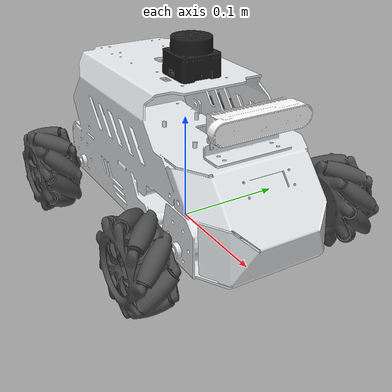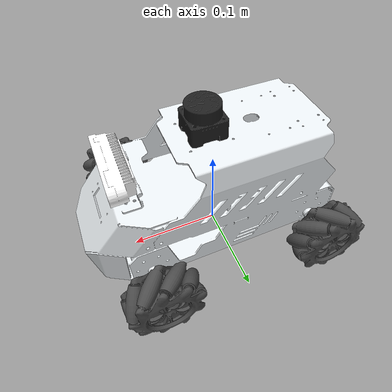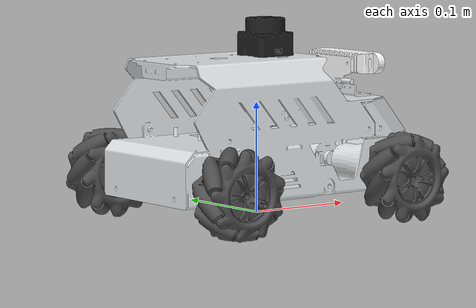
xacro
<?xml version="1.0" encoding="utf-8"?>
<robot name="yahboomcar_M1" xmlns:xacro="http://ros.org/wiki/xacro">
  <link name="robot2/imu_link"/>
  <link
    name="robot2/base_link">
    <inertial>
      <origin
        xyz="-0.0020739162578774 -4.39969271518998E-05 0.0381795619256894"
        rpy="0 0 0" />
      <mass
        value="1.12702131727643" />
      <inertia
        ixx="0.00181310723339938"
        ixy="-2.40224897360524E-06"
        ixz="6.11559242502713E-05"
        iyy="0.00349886071341033"
        iyz="2.3151802524198E-07"
        izz="0.0047267657491446" />
    </inertial>
    <visual>
      <origin
        xyz="0 0 0"
        rpy="0 0 0" />
      <geometry>
        <mesh
          filename="package://imperative_m1_description/meshes/M1Mecanum/base_link.STL" />
      </geometry>
      <material
        name="">
        <color
          rgba="0.898039215686275 0.917647058823529 0.929411764705882 1" />
      </material>
    </visual>
    <collision>
      <origin
        xyz="0 0 0"
        rpy="0 0 0" />
      <geometry>
        <mesh
          filename="package://imperative_m1_description/meshes/M1Mecanum/base_link.STL" />
      </geometry>
    </collision>
  </link>
  <link
    name="robot2/le_fr_Link">
    <inertial>
      <origin
        xyz="3.74162684547708E-05 0.0119013767503815 1.8633789082111E-05"
        rpy="0 0 0" />
      <mass
        value="0.1018682435606" />
      <inertia
        ixx="4.56509058995796E-05"
        ixy="1.72107550394689E-09"
        ixz="1.0319916182617E-10"
        iyy="7.54636524396618E-05"
        iyz="-2.41217172765742E-09"
        izz="4.56518357290391E-05" />
    </inertial>
    <visual>
      <origin
        xyz="0 0 0"
        rpy="0 0 0" />
      <geometry>
        <mesh
          filename="package://imperative_m1_description/meshes/M1Mecanum/le_fr_Link.STL" />
      </geometry>
      <material
        name="">
        <color
          rgba="0.298039215686275 0.298039215686275 0.298039215686275 1" />
      </material>
    </visual>
    <collision>
      <origin
        xyz="0 0 0"
        rpy="0 0 0" />
      <geometry>
        <mesh
          filename="package://imperative_m1_description/meshes/M1Mecanum/le_fr_Link.STL" />
      </geometry>
    </collision>
  </link>
  <joint
    name="robot2/le_fr_joint"
    type="continuous">
    <origin
      xyz="0.092963 0.08425 0.012478"
      rpy="0 0 0" />
    <parent
      link="robot2/base_link" />
    <child
      link="robot2/le_fr_Link" />
    <axis
      xyz="0 1 0" />
    <limit
      effort="1"
      velocity="1000" />
  </joint>
  <link
    name="robot2/le_be_Link">
    <inertial>
      <origin
        xyz="2.11974264675563E-05 0.0119013488160274 -1.06210814036223E-05"
        rpy="0 0 0" />
      <mass
        value="0.101866167329924" />
      <inertia
        ixx="4.56501478317985E-05"
        ixy="1.61457183793779E-09"
        ixz="-1.7346463573744E-10"
        iyy="7.54628873901978E-05"
        iyz="1.6115372298789E-09"
        izz="4.56509848260518E-05" />
    </inertial>
    <visual>
      <origin
        xyz="0 0 0"
        rpy="0 0 0" />
      <geometry>
        <mesh
          filename="package://imperative_m1_description/meshes/M1Mecanum/le_be_Link.STL" />
      </geometry>
      <material
        name="">
        <color
          rgba="0.298039215686275 0.298039215686275 0.298039215686275 1" />
      </material>
    </visual>
    <collision>
      <origin
        xyz="0 0 0"
        rpy="0 0 0" />
      <geometry>
        <mesh
          filename="package://imperative_m1_description/meshes/M1Mecanum/le_be_Link.STL" />
      </geometry>
    </collision>
  </link>
  <joint
    name="robot2/le_be_joint"
    type="continuous">
    <origin
      xyz="-0.093021 0.08425 0.012513"
      rpy="0 0 0" />
    <parent
      link="robot2/base_link" />
    <child
      link="robot2/le_be_Link" />
    <axis
      xyz="0 1 0" />
    <limit
      effort="1"
      velocity="1000" />
  </joint>
  <link
    name="robot2/ri_fr_Link">
    <inertial>
      <origin
        xyz="2.11977287164072E-05 -0.0119013488361464 9.32023117629181E-06"
        rpy="0 0 0" />
      <mass
        value="0.101866167092724" />
      <inertia
        ixx="4.56501477847335E-05"
        ixy="-1.61520634618352E-09"
        ixz="1.7347004056711E-10"
        iyy="7.54628873253633E-05"
        iyz="2.46883958641426E-09"
        izz="4.56509847444025E-05" />
    </inertial>
    <visual>
      <origin
        xyz="0 0 0"
        rpy="0 0 0" />
      <geometry>
        <mesh
          filename="package://imperative_m1_description/meshes/M1Mecanum/ri_fr_Link.STL" />
      </geometry>
      <material
        name="">
        <color
          rgba="0.298039215686275 0.298039215686275 0.298039215686275 1" />
      </material>
    </visual>
    <collision>
      <origin
        xyz="0 0 0"
        rpy="0 0 0" />
      <geometry>
        <mesh
          filename="package://imperative_m1_description/meshes/M1Mecanum/ri_fr_Link.STL" />
      </geometry>
    </collision>
  </link>
  <joint
    name="robot2/ri_fr_joint"
    type="continuous">
    <origin
      xyz="0.092979 -0.08425 0.012487"
      rpy="0 0 0" />
    <parent
      link="robot2/base_link" />
    <child
      link="robot2/ri_fr_Link" />
    <axis
      xyz="0 1 0" />
    <limit
      effort="1"
      velocity="1000" />
  </joint>
  <link
    name="robot2/ri_be_Link">
    <inertial>
      <origin
        xyz="-3.74163286540885E-05 -0.0119013766454677 1.86339525866906E-05"
        rpy="0 0 0" />
      <mass
        value="0.10186824679334" />
      <inertia
        ixx="4.56509076979822E-05"
        ixy="1.72212214188587E-09"
        ixz="-1.03323635476929E-10"
        iyy="7.54636542216792E-05"
        iyz="2.41246494500223E-09"
        izz="4.56518378184173E-05" />
    </inertial>
    <visual>
      <origin
        xyz="0 0 0"
        rpy="0 0 0" />
      <geometry>
        <mesh
          filename="package://imperative_m1_description/meshes/M1Mecanum/ri_be_Link.STL" />
      </geometry>
      <material
        name="">
        <color
          rgba="0.298039215686275 0.298039215686275 0.298039215686275 1" />
      </material>
    </visual>
    <collision>
      <origin
        xyz="0 0 0"
        rpy="0 0 0" />
      <geometry>
        <mesh
          filename="package://imperative_m1_description/meshes/M1Mecanum/ri_be_Link.STL" />
      </geometry>
    </collision>
  </link>
  <joint
    name="robot2/ri_be_joint"
    type="continuous">
    <origin
      xyz="-0.092963 -0.08425 0.012478"
      rpy="0 0 0" />
    <parent
      link="robot2/base_link" />
    <child
      link="robot2/ri_be_Link" />
    <axis
      xyz="0 1 0" />
    <limit
      effort="1"
      velocity="1000" />
  </joint>
  <link
    name="robot2/camera_Link">
    <inertial>
      <origin
        xyz="0.0157767641894292 0.000721365680700427 0.0149734593328876"
        rpy="0 0 0" />
      <mass
        value="0.0287355108109751" />
      <inertia
        ixx="1.49499545679702E-05"
        ixy="1.24830471193473E-07"
        ixz="1.37445274012946E-08"
        iyy="1.81620472110271E-06"
        iyz="2.27879400730189E-08"
        izz="1.49490109031663E-05" />
    </inertial>
    <visual>
      <origin
        xyz="0 0 0"
        rpy="0 0 0" />
      <geometry>
        <mesh
          filename="package://imperative_m1_description/meshes/M1Mecanum/camera_Link.STL" />
      </geometry>
      <material
        name="">
        <color
          rgba="1 1 1 1" />
      </material>
    </visual>
    <collision>
      <origin
        xyz="0 0 0"
        rpy="0 0 0" />
      <geometry>
        <mesh
          filename="package://imperative_m1_description/meshes/M1Mecanum/camera_Link.STL" />
      </geometry>
    </collision>
  </link>
  <joint
    name="robot2/camera_joint"
    type="fixed">
    <origin
      xyz="0.085871 0 0.094136"
      rpy="0 0 0" />
    <parent
      link="robot2/base_link" />
    <child
      link="robot2/camera_Link" />
    <axis
      xyz="0 0 0" />
    <limit
      effort="1"
      velocity="1000" />
  </joint>
  <link
    name="robot2/laser_Link">
    <inertial>
      <origin
        xyz="8.01192970788828E-05 -0.00014283722345854 -0.0125536403657815"
        rpy="0 0 0" />
      <mass
        value="0.00992629938318759" />
      <inertia
        ixx="1.91413177271348E-06"
        ixy="-2.34516063220995E-08"
        ixz="3.84281721109855E-09"
        iyy="1.8985026286829E-06"
        iyz="-1.82879279848947E-09"
        izz="3.33334865875319E-06" />
    </inertial>
    <visual>
      <origin
        xyz="0 0 0"
        rpy="0 0 0" />
      <geometry>
        <mesh
          filename="package://imperative_m1_description/meshes/M1Mecanum/laser_Link.STL" />
      </geometry>
      <material
        name="">
        <color
          rgba="0.113725490196078 0.113725490196078 0.113725490196078 1" />
      </material>
    </visual>
    <collision>
      <origin
        xyz="0 0 0"
        rpy="0 0 0" />
      <geometry>
        <mesh
          filename="package://imperative_m1_description/meshes/M1Mecanum/laser_Link.STL" />
      </geometry>
    </collision>
  </link>
  <joint
    name="robot2/laser_joint"
    type="fixed">
    <origin
      xyz="0.010059 0 0.14712"
      rpy="0 0 0" />
    <parent
      link="robot2/base_link" />
    <child
      link="robot2/laser_Link" />
    <axis
      xyz="0 0 0" />
    <limit
      effort="1"
      velocity="1000" />
  </joint>
  <joint name="robot2/base_imu" type="fixed">
  <parent link="robot2/base_link"/>
  <child link="robot2/imu_link"/>
  <origin xyz="-0.025 -0.034 -0.0165" rpy="0 0 0"/>
  </joint>

  <link name="robot2/base_footprint"/>
  <joint name="robot2/base_joint" type="fixed">
    <parent link="robot2/base_footprint"/>
    <child link="robot2/base_link"/>
    <origin xyz="0.0 0.0 0.0215" rpy="0 0 0"/>
  </joint>
</robot>
